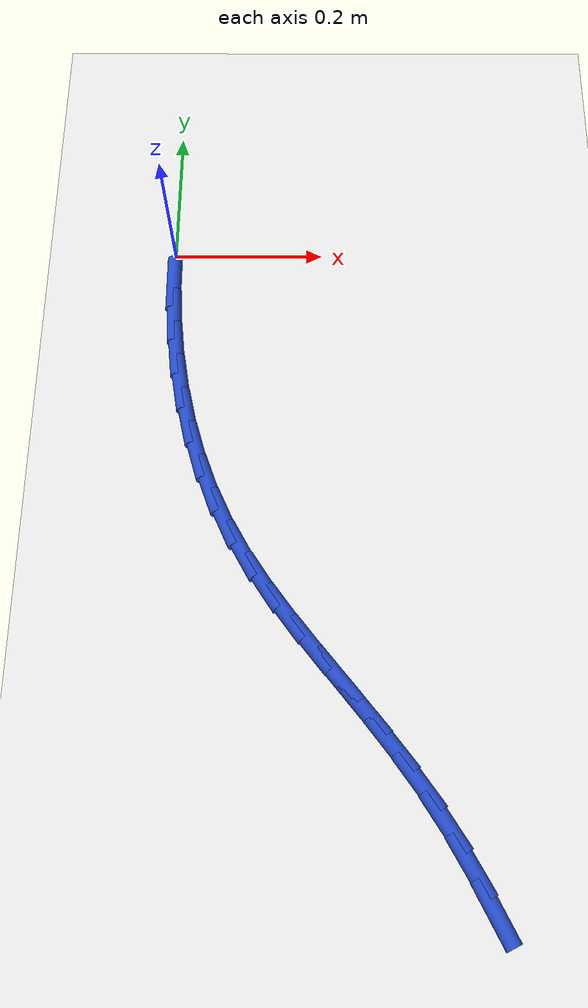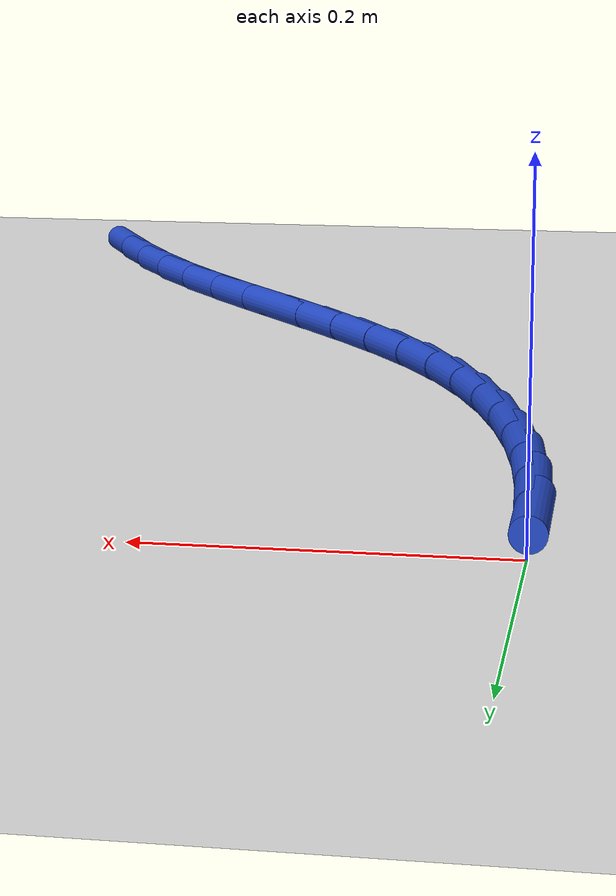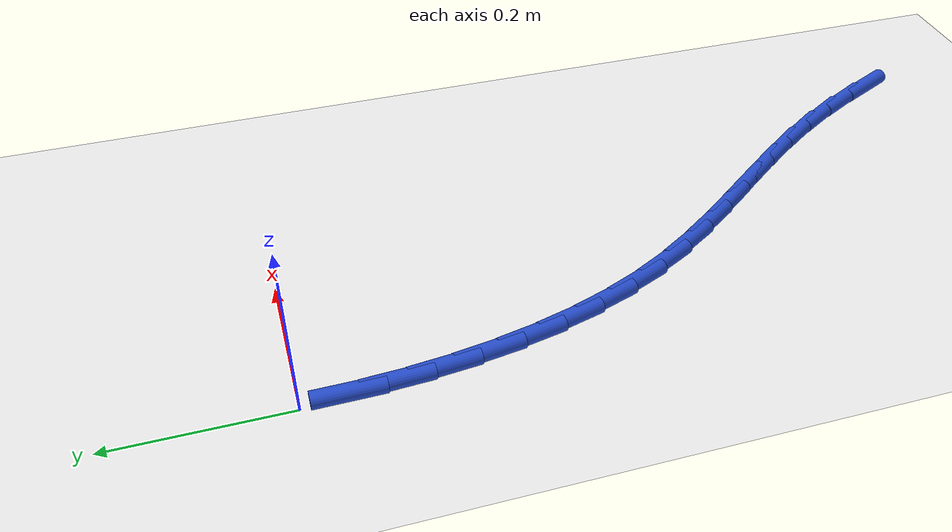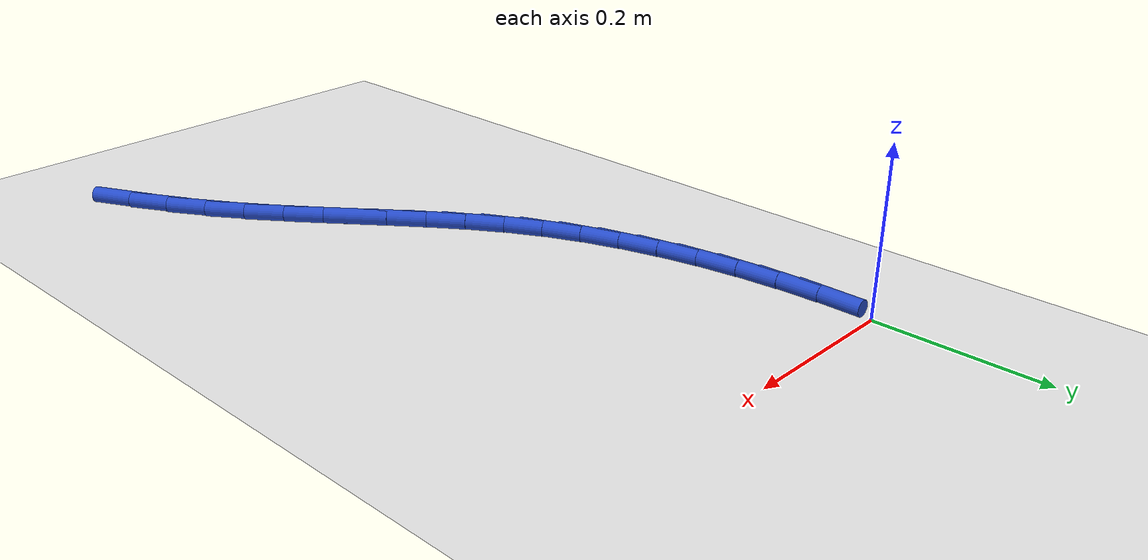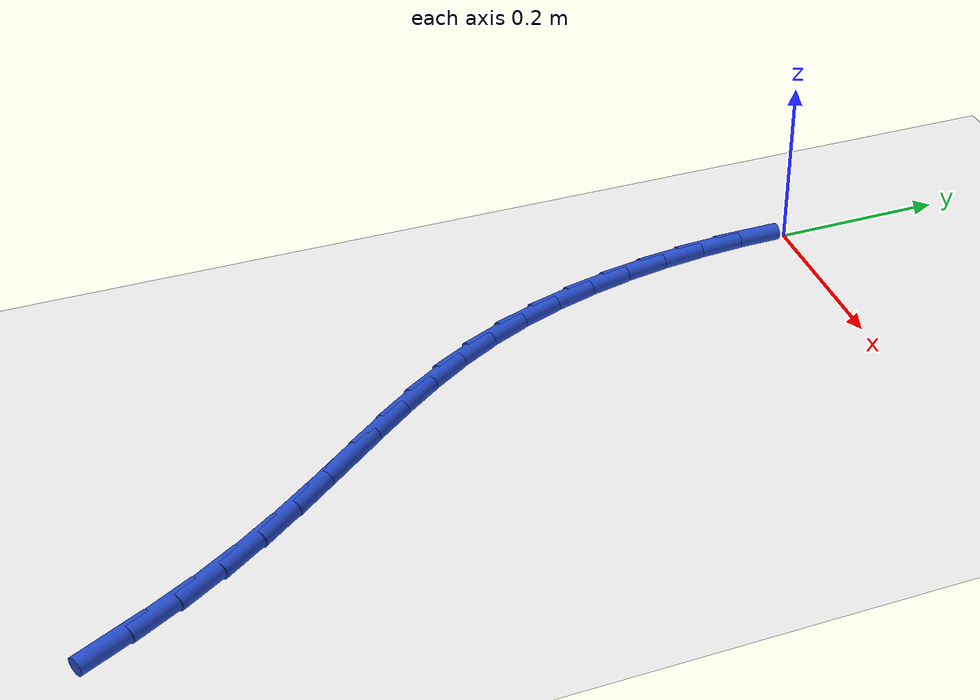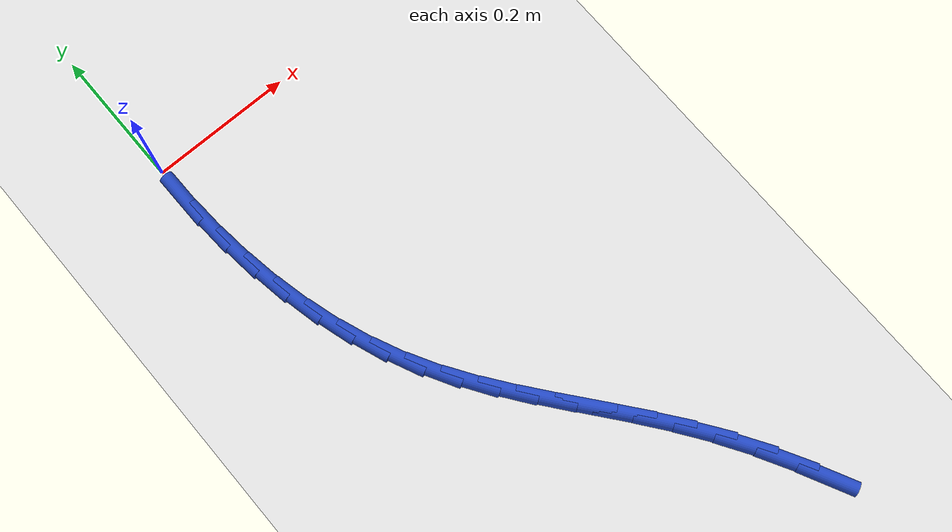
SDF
<sdf version="1.6">
 <world name="default">
  <model name="ground_plane">
   <static>1</static>
   <link name="link">
    <collision name="collision">
     <geometry><plane><normal>0 0 1</normal><size>100 100</size></plane></geometry>
     <surface><friction><ode><mu>100</mu><mu2>50</mu2></ode></friction></surface>
    </collision>
    <visual name="visual">
     <cast_shadows>0</cast_shadows>
     <geometry><plane><normal>0 0 1</normal><size>100 100</size></plane></geometry>
     <material>
      <script><uri>file://media/materials/scripts/gazebo.material</uri><name>Gazebo/WhiteGlow</name></script>
     </material>
    </visual>
   </link>
  </model>
  <model name="line">
   <link name="link_131">
    <pose>0.39228768687847165 -0.8561556572349617 0.01 0 1.57 -1.1034492802398046</pose>
    <collision name="collision">
     <geometry><cylinder><radius>0.01</radius><length>0.08</length></cylinder></geometry>
    </collision>
    <visual name="visual">
     <material>
      <script><name>Gazebo/Blue</name><uri>file://media/materials/scripts/gazebo.material</uri></script>
     </material>
     <geometry><cylinder><radius>0.01</radius><length>0.08</length></cylinder></geometry>
    </visual>
   </link>
   <link name="link_132">
    <pose>0.36765766159652247 -0.8073478488532004 0.01 0 1.57 -1.0606332637865443</pose>
    <collision name="collision">
     <geometry><cylinder><radius>0.01</radius><length>0.08</length></cylinder></geometry>
    </collision>
    <visual name="visual">
     <material>
      <script><name>Gazebo/Blue</name><uri>file://media/materials/scripts/gazebo.material</uri></script>
     </material>
     <geometry><cylinder><radius>0.01</radius><length>0.08</length></cylinder></geometry>
    </visual>
   </link>
   <link name="link_133">
    <pose>0.34139014673172513 -0.76040576368698 0.01 0 1.57 -1.0049453446250214</pose>
    <collision name="collision">
     <geometry><cylinder><radius>0.01</radius><length>0.08</length></cylinder></geometry>
    </collision>
    <visual name="visual">
     <material>
      <script><name>Gazebo/Blue</name><uri>file://media/materials/scripts/gazebo.material</uri></script>
     </material>
     <geometry><cylinder><radius>0.01</radius><length>0.08</length></cylinder></geometry>
    </visual>
   </link>
   <link name="link_134">
    <pose>0.3131206777571139 -0.7158960580336289 0.01 0 1.57 -0.9519061517900002</pose>
    <collision name="collision">
     <geometry><cylinder><radius>0.01</radius><length>0.08</length></cylinder></geometry>
    </collision>
    <visual name="visual">
     <material>
      <script><name>Gazebo/Blue</name><uri>file://media/materials/scripts/gazebo.material</uri></script>
     </material>
     <geometry><cylinder><radius>0.01</radius><length>0.08</length></cylinder></geometry>
    </visual>
   </link>
   <link name="link_135">
    <pose>0.2830786163891925 -0.6737160655225146 0.01 0 1.57 -0.9144687146739677</pose>
    <collision name="collision">
     <geometry><cylinder><radius>0.01</radius><length>0.08</length></cylinder></geometry>
    </collision>
    <visual name="visual">
     <material>
      <script><name>Gazebo/Blue</name><uri>file://media/materials/scripts/gazebo.material</uri></script>
     </material>
     <geometry><cylinder><radius>0.01</radius><length>0.08</length></cylinder></geometry>
    </visual>
   </link>
   <link name="link_136">
    <pose>0.25192800135764437 -0.6332731798698318 0.01 0 1.57 -0.8939264099388018</pose>
    <collision name="collision">
     <geometry><cylinder><radius>0.01</radius><length>0.08</length></cylinder></geometry>
    </collision>
    <visual name="visual">
     <material>
      <script><name>Gazebo/Blue</name><uri>file://media/materials/scripts/gazebo.material</uri></script>
     </material>
     <geometry><cylinder><radius>0.01</radius><length>0.08</length></cylinder></geometry>
    </visual>
   </link>
   <link name="link_137">
    <pose>0.22034282944378628 -0.5939635707178004 0.01 0 1.57 -0.8910191292742551</pose>
    <collision name="collision">
     <geometry><cylinder><radius>0.01</radius><length>0.08</length></cylinder></geometry>
    </collision>
    <visual name="visual">
     <material>
      <script><name>Gazebo/Blue</name><uri>file://media/materials/scripts/gazebo.material</uri></script>
     </material>
     <geometry><cylinder><radius>0.01</radius><length>0.08</length></cylinder></geometry>
    </visual>
   </link>
   <link name="link_138">
    <pose>0.1889970974289354 -0.5551834077086397 0.01 0 1.57 -0.9063610085214074</pose>
    <collision name="collision">
     <geometry><cylinder><radius>0.01</radius><length>0.08</length></cylinder></geometry>
    </collision>
    <visual name="visual">
     <material>
      <script><name>Gazebo/Blue</name><uri>file://media/materials/scripts/gazebo.material</uri></script>
     </material>
     <geometry><cylinder><radius>0.01</radius><length>0.08</length></cylinder></geometry>
    </visual>
   </link>
   <link name="link_139">
    <pose>0.15856480209440696 -0.5163288604845683 0.01 0 1.57 -0.9404505278557819</pose>
    <collision name="collision">
     <geometry><cylinder><radius>0.01</radius><length>0.08</length></cylinder></geometry>
    </collision>
    <visual name="visual">
     <material>
      <script><name>Gazebo/Blue</name><uri>file://media/materials/scripts/gazebo.material</uri></script>
     </material>
     <geometry><cylinder><radius>0.01</radius><length>0.08</length></cylinder></geometry>
    </visual>
   </link>
   <link name="link_140">
    <pose>0.12971994022151853 -0.476796098687806 0.01 0 1.57 -0.9934948968308284</pose>
    <collision name="collision">
     <geometry><cylinder><radius>0.01</radius><length>0.08</length></cylinder></geometry>
    </collision>
    <visual name="visual">
     <material>
      <script><name>Gazebo/Blue</name><uri>file://media/materials/scripts/gazebo.material</uri></script>
     </material>
     <geometry><cylinder><radius>0.01</radius><length>0.08</length></cylinder></geometry>
    </visual>
   </link>
   <link name="link_141">
    <pose>0.10313650859158568 -0.43598129196057095 0.01 0 1.57 -1.0649170363107499</pose>
    <collision name="collision">
     <geometry><cylinder><radius>0.01</radius><length>0.08</length></cylinder></geometry>
    </collision>
    <visual name="visual">
     <material>
      <script><name>Gazebo/Blue</name><uri>file://media/materials/scripts/gazebo.material</uri></script>
     </material>
     <geometry><cylinder><radius>0.01</radius><length>0.08</length></cylinder></geometry>
    </visual>
   </link>
   <link name="link_142">
    <pose>0.07948453050889252 -0.3932851943134339 0.01 0 1.57 -1.1450923581956352</pose>
    <collision name="collision">
     <geometry><cylinder><radius>0.01</radius><length>0.08</length></cylinder></geometry>
    </collision>
    <visual name="visual">
     <material>
      <script><name>Gazebo/Blue</name><uri>file://media/materials/scripts/gazebo.material</uri></script>
     </material>
     <geometry><cylinder><radius>0.01</radius><length>0.08</length></cylinder></geometry>
    </visual>
   </link>
   <link name="link_143">
    <pose>0.059149084401307 -0.34843731270114375 0.01 0 1.57 -1.2198928417031638</pose>
    <collision name="collision">
     <geometry><cylinder><radius>0.01</radius><length>0.08</length></cylinder></geometry>
    </collision>
    <visual name="visual">
     <material>
      <script><name>Gazebo/Blue</name><uri>file://media/materials/scripts/gazebo.material</uri></script>
     </material>
     <geometry><cylinder><radius>0.01</radius><length>0.08</length></cylinder></geometry>
    </visual>
   </link>
   <link name="link_144">
    <pose>0.042044518672141755 -0.3017102551983272 0.01 0 1.57 -1.2885115960545317</pose>
    <collision name="collision">
     <geometry><cylinder><radius>0.01</radius><length>0.08</length></cylinder></geometry>
    </collision>
    <visual name="visual">
     <material>
      <script><name>Gazebo/Blue</name><uri>file://media/materials/scripts/gazebo.material</uri></script>
     </material>
     <geometry><cylinder><radius>0.01</radius><length>0.08</length></cylinder></geometry>
    </visual>
   </link>
   <link name="link_145">
    <pose>0.028041090245611938 -0.25342750008212156 0.01 0 1.57 -1.3515749765857916</pose>
    <collision name="collision">
     <geometry><cylinder><radius>0.01</radius><length>0.08</length></cylinder></geometry>
    </collision>
    <visual name="visual">
     <material>
      <script><name>Gazebo/Blue</name><uri>file://media/materials/scripts/gazebo.material</uri></script>
     </material>
     <geometry><cylinder><radius>0.01</radius><length>0.08</length></cylinder></geometry>
    </visual>
   </link>
   <link name="link_146">
    <pose>0.01700905604593166 -0.2039125256296612 0.01 0 1.57 -1.409771483319955</pose>
    <collision name="collision">
     <geometry><cylinder><radius>0.01</radius><length>0.08</length></cylinder></geometry>
    </collision>
    <visual name="visual">
     <material>
      <script><name>Gazebo/Blue</name><uri>file://media/materials/scripts/gazebo.material</uri></script>
     </material>
     <geometry><cylinder><radius>0.01</radius><length>0.08</length></cylinder></geometry>
    </visual>
   </link>
   <link name="link_147">
    <pose>0.008818672997315757 -0.15348881011808274 0.01 0 1.57 -1.463804291063987</pose>
    <collision name="collision">
     <geometry><cylinder><radius>0.01</radius><length>0.08</length></cylinder></geometry>
    </collision>
    <visual name="visual">
     <material>
      <script><name>Gazebo/Blue</name><uri>file://media/materials/scripts/gazebo.material</uri></script>
     </material>
     <geometry><cylinder><radius>0.01</radius><length>0.08</length></cylinder></geometry>
    </visual>
   </link>
   <link name="link_148">
    <pose>0.003340198023978858 -0.10247983182452297 0.01 0 1.57 -1.5143658228417753</pose>
    <collision name="collision">
     <geometry><cylinder><radius>0.01</radius><length>0.08</length></cylinder></geometry>
    </collision>
    <visual name="visual">
     <material>
      <script><name>Gazebo/Blue</name><uri>file://media/materials/scripts/gazebo.material</uri></script>
     </material>
     <geometry><cylinder><radius>0.01</radius><length>0.08</length></cylinder></geometry>
    </visual>
   </link>
   <link name="link_149">
    <pose>0.00044388805013537147 -0.05120906902611613 0.01 0 1.57 -1.5621283907901216</pose>
    <collision name="collision">
     <geometry><cylinder><radius>0.01</radius><length>0.08</length></cylinder></geometry>
    </collision>
    <visual name="visual">
     <material>
      <script><name>Gazebo/Blue</name><uri>file://media/materials/scripts/gazebo.material</uri></script>
     </material>
     <geometry><cylinder><radius>0.01</radius><length>0.08</length></cylinder></geometry>
    </visual>
   </link>
  </model>
 </world>
</sdf>
